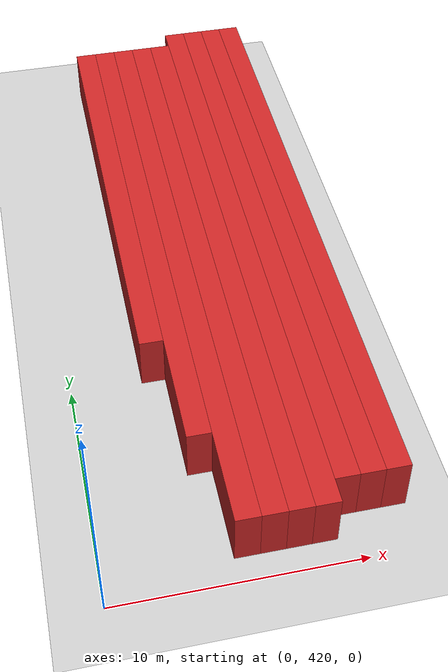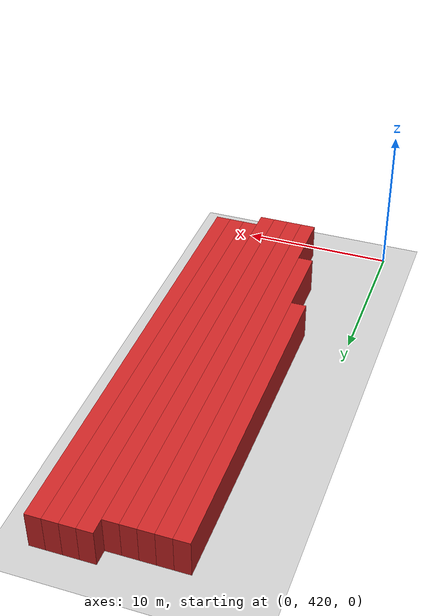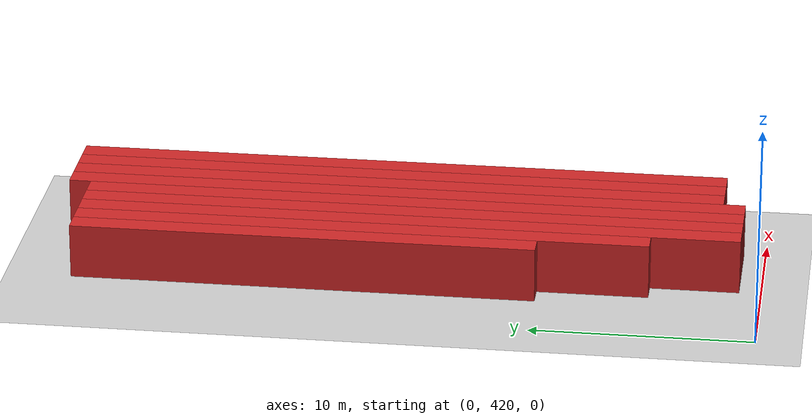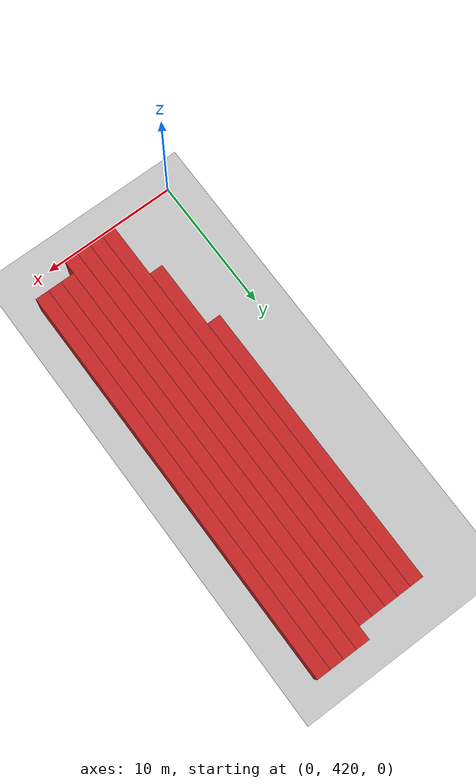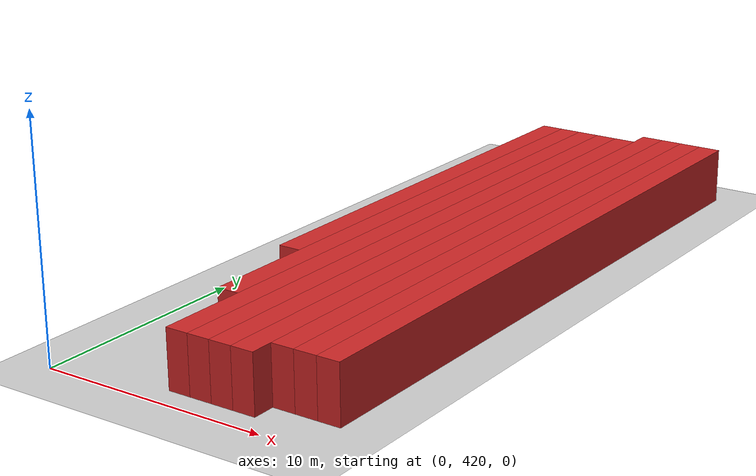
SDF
<sdf version="1.4">
 <world name="1_wall">
  <model name="ground_plane">
   <static>1</static>
   <link name="link">
    <collision name="collision">
     <geometry><plane><normal>0 0 1</normal><size>1000 1000</size></plane></geometry>
     <surface><friction><ode><mu>100</mu><mu2>50</mu2></ode></friction></surface>
    </collision>
    <visual name="visual">
     <cast_shadows>0</cast_shadows>
     <geometry><plane><normal>0 0 1</normal><size>10000 10000</size></plane></geometry>
     <material>
      <script><uri>file://media/materials/scripts/gazebo.material</uri><name>Gazebo/Grey</name></script>
     </material>
    </visual>
    <velocity_decay><linear>0</linear><angular>0</angular></velocity_decay>
   </link>
  </model>
  <model name="Wall_10">
   <static>1</static>
   <link name="Wall_10">
    <collision name="Wall_Collision_10">
     <geometry><box><size>21.0 1.0 2.5</size></box></geometry>
     <pose>0 0 1.25 0 -0 0</pose>
    </collision>
    <visual name="Wall_Visual_10">
     <pose>0 0 1.25 0 -0 0</pose>
     <geometry><box><size>21.0 1.0 2.5</size></box></geometry>
     <material>
      <script><uri>file://media/materials/scripts/gazebo.material</uri><name>Gazebo/Red</name></script>
     </material>
    </visual>
    <velocity_decay><linear>0</linear><angular>0</angular></velocity_decay>
    <pose>3.5 440.5 0 0 0 1.5707963267948966</pose>
   </link>
  </model>
  <model name="Wall_11">
   <static>1</static>
   <link name="Wall_11">
    <collision name="Wall_Collision_11">
     <geometry><box><size>26.0 1.0 2.5</size></box></geometry>
     <pose>0 0 1.25 0 -0 0</pose>
    </collision>
    <visual name="Wall_Visual_11">
     <pose>0 0 1.25 0 -0 0</pose>
     <geometry><box><size>26.0 1.0 2.5</size></box></geometry>
     <material>
      <script><uri>file://media/materials/scripts/gazebo.material</uri><name>Gazebo/Red</name></script>
     </material>
    </visual>
    <velocity_decay><linear>0</linear><angular>0</angular></velocity_decay>
    <pose>4.5 438.0 0 0 0 1.5707963267948966</pose>
   </link>
  </model>
  <model name="Wall_12">
   <static>1</static>
   <link name="Wall_12">
    <collision name="Wall_Collision_12">
     <geometry><box><size>30.0 1.0 2.5</size></box></geometry>
     <pose>0 0 1.25 0 -0 0</pose>
    </collision>
    <visual name="Wall_Visual_12">
     <pose>0 0 1.25 0 -0 0</pose>
     <geometry><box><size>30.0 1.0 2.5</size></box></geometry>
     <material>
      <script><uri>file://media/materials/scripts/gazebo.material</uri><name>Gazebo/Red</name></script>
     </material>
    </visual>
    <velocity_decay><linear>0</linear><angular>0</angular></velocity_decay>
    <pose>5.5 436.0 0 0 0 1.5707963267948966</pose>
   </link>
  </model>
  <model name="Wall_13">
   <static>1</static>
   <link name="Wall_13">
    <collision name="Wall_Collision_13">
     <geometry><box><size>30.0 1.0 2.5</size></box></geometry>
     <pose>0 0 1.25 0 -0 0</pose>
    </collision>
    <visual name="Wall_Visual_13">
     <pose>0 0 1.25 0 -0 0</pose>
     <geometry><box><size>30.0 1.0 2.5</size></box></geometry>
     <material>
      <script><uri>file://media/materials/scripts/gazebo.material</uri><name>Gazebo/Red</name></script>
     </material>
    </visual>
    <velocity_decay><linear>0</linear><angular>0</angular></velocity_decay>
    <pose>6.5 436.0 0 0 0 1.5707963267948966</pose>
   </link>
  </model>
  <model name="Wall_14">
   <static>1</static>
   <link name="Wall_14">
    <collision name="Wall_Collision_14">
     <geometry><box><size>30.0 1.0 2.5</size></box></geometry>
     <pose>0 0 1.25 0 -0 0</pose>
    </collision>
    <visual name="Wall_Visual_14">
     <pose>0 0 1.25 0 -0 0</pose>
     <geometry><box><size>30.0 1.0 2.5</size></box></geometry>
     <material>
      <script><uri>file://media/materials/scripts/gazebo.material</uri><name>Gazebo/Red</name></script>
     </material>
    </visual>
    <velocity_decay><linear>0</linear><angular>0</angular></velocity_decay>
    <pose>7.5 436.0 0 0 0 1.5707963267948966</pose>
   </link>
  </model>
  <model name="Wall_15">
   <static>1</static>
   <link name="Wall_15">
    <collision name="Wall_Collision_15">
     <geometry><box><size>31.0 1.0 2.5</size></box></geometry>
     <pose>0 0 1.25 0 -0 0</pose>
    </collision>
    <visual name="Wall_Visual_15">
     <pose>0 0 1.25 0 -0 0</pose>
     <geometry><box><size>31.0 1.0 2.5</size></box></geometry>
     <material>
      <script><uri>file://media/materials/scripts/gazebo.material</uri><name>Gazebo/Red</name></script>
     </material>
    </visual>
    <velocity_decay><linear>0</linear><angular>0</angular></velocity_decay>
    <pose>8.5 436.5 0 0 0 1.5707963267948966</pose>
   </link>
  </model>
  <model name="Wall_16">
   <static>1</static>
   <link name="Wall_16">
    <collision name="Wall_Collision_16">
     <geometry><box><size>30.0 1.0 2.5</size></box></geometry>
     <pose>0 0 1.25 0 -0 0</pose>
    </collision>
    <visual name="Wall_Visual_16">
     <pose>0 0 1.25 0 -0 0</pose>
     <geometry><box><size>30.0 1.0 2.5</size></box></geometry>
     <material>
      <script><uri>file://media/materials/scripts/gazebo.material</uri><name>Gazebo/Red</name></script>
     </material>
    </visual>
    <velocity_decay><linear>0</linear><angular>0</angular></velocity_decay>
    <pose>9.5 437.0 0 0 0 1.5707963267948966</pose>
   </link>
  </model>
  <model name="Wall_17">
   <static>1</static>
   <link name="Wall_17">
    <collision name="Wall_Collision_17">
     <geometry><box><size>30.0 1.0 2.5</size></box></geometry>
     <pose>0 0 1.25 0 -0 0</pose>
    </collision>
    <visual name="Wall_Visual_17">
     <pose>0 0 1.25 0 -0 0</pose>
     <geometry><box><size>30.0 1.0 2.5</size></box></geometry>
     <material>
      <script><uri>file://media/materials/scripts/gazebo.material</uri><name>Gazebo/Red</name></script>
     </material>
    </visual>
    <velocity_decay><linear>0</linear><angular>0</angular></velocity_decay>
    <pose>10.5 437.0 0 0 0 1.5707963267948966</pose>
   </link>
  </model>
  <model name="Wall_18">
   <static>1</static>
   <link name="Wall_18">
    <collision name="Wall_Collision_18">
     <geometry><box><size>30.0 1.0 2.5</size></box></geometry>
     <pose>0 0 1.25 0 -0 0</pose>
    </collision>
    <visual name="Wall_Visual_18">
     <pose>0 0 1.25 0 -0 0</pose>
     <geometry><box><size>30.0 1.0 2.5</size></box></geometry>
     <material>
      <script><uri>file://media/materials/scripts/gazebo.material</uri><name>Gazebo/Red</name></script>
     </material>
    </visual>
    <velocity_decay><linear>0</linear><angular>0</angular></velocity_decay>
    <pose>11.5 437.0 0 0 0 1.5707963267948966</pose>
   </link>
  </model>
 </world>
</sdf>
